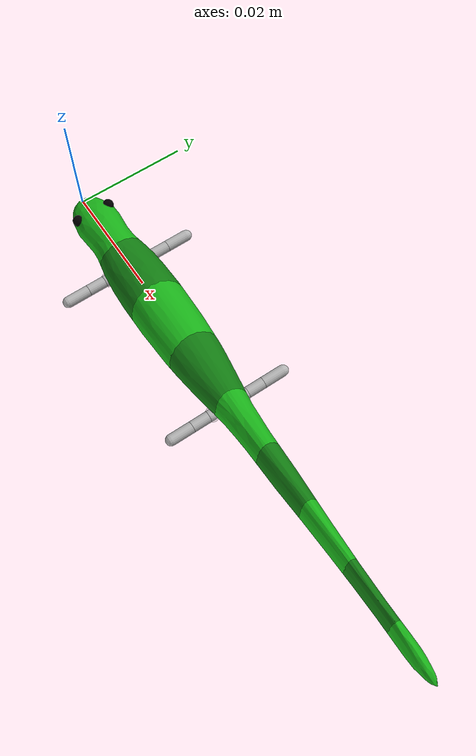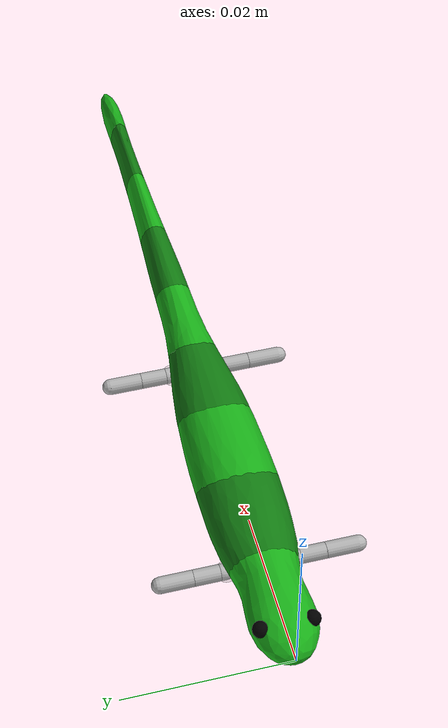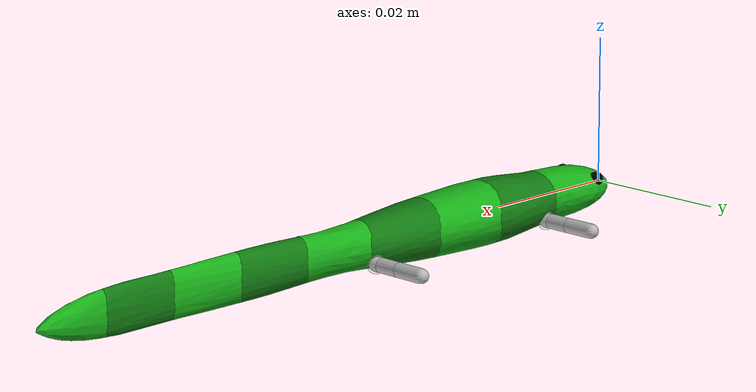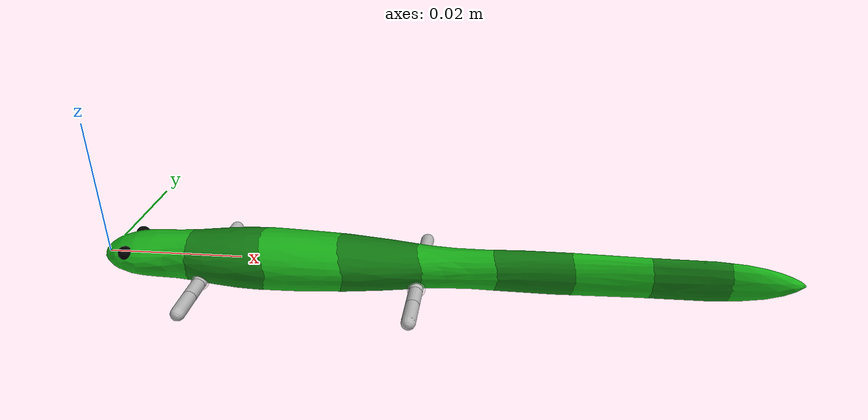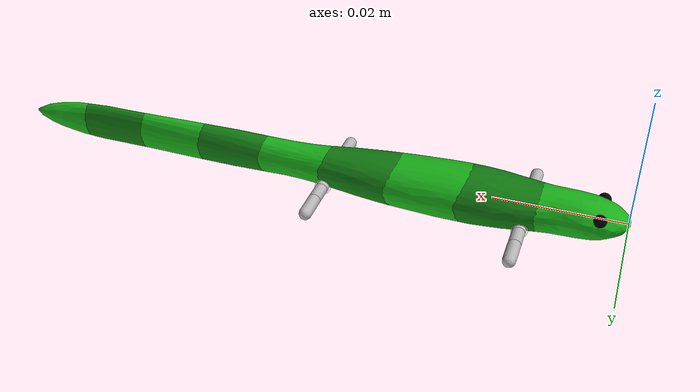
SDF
<?xml version="1.0" ?>
<sdf version="1.6">
  <world name="world">
    <model name="salamander">
      <pose>0.0 0.0 0.0 0.0 0.0 0.0</pose>
      <link name="link_body_0">
        <pose>0.0 0.0 0.0 0.0 0.0 0.0</pose>
        <inertial>
          <pose>0.006714263575088745 -1.960440964835103e-07 -1.371206419060886e-06 0.0 0.0 0.0</pose>
          <mass>0.00030133236332711153</mass>
          <inertia>
            <ixx>1.871392745404874e-09</ixx>
            <ixy>-1.580462968659555e-13</ixy>
            <ixz>2.595537477393151e-12</ixz>
            <iyy>3.441363919070135e-09</iyy>
            <iyz>1.1717730630065719e-13</iyz>
            <izz>3.76327339485108e-09</izz>
          </inertia>
        </inertial>
        <collision name="link_0_collision">
          <pose>0.0 0.0 0.0 0.0 0.0 0.0</pose>
          <geometry>
            <mesh>
              <uri>meshes_salamander/link_0.obj</uri>
              <scale>0.1 0.1 0.1</scale>
            </mesh>
          </geometry>
        </collision>
        <visual name="link_0_visual">
          <pose>0.0 0.0 0.0 0.0 0.0 0.0</pose>
          <geometry>
            <mesh>
              <uri>meshes_salamander/link_0.obj</uri>
              <scale>0.1 0.1 0.1</scale>
            </mesh>
          </geometry>
          <material>
            <ambient>0.1 0.7 0.1 1.0</ambient>
            <diffuse>0.1 0.7 0.1 1.0</diffuse>
            <specular>0.1 0.7 0.1 1.0</specular>
            <emissive>0.1 0.7 0.1 1.0</emissive>
          </material>
        </visual>
        <visual name="eye_left_visual">
          <pose>0.004 -0.003 0.0015 0.0 0.0 0.0</pose>
          <geometry>
            <sphere>
              <radius>0.001</radius>
            </sphere>
          </geometry>
          <material>
            <ambient>0.0 0.0 0.0 1.0</ambient>
            <diffuse>0.0 0.0 0.0 1.0</diffuse>
            <specular>0.0 0.0 0.0 1.0</specular>
            <emissive>0.0 0.0 0.0 1.0</emissive>
          </material>
        </visual>
        <visual name="eye_right_visual">
          <pose>0.004 0.003 0.0015 0.0 0.0 0.0</pose>
          <geometry>
            <sphere>
              <radius>0.001</radius>
            </sphere>
          </geometry>
          <material>
            <ambient>0.0 0.0 0.0 1.0</ambient>
            <diffuse>0.0 0.0 0.0 1.0</diffuse>
            <specular>0.0 0.0 0.0 1.0</specular>
            <emissive>0.0 0.0 0.0 1.0</emissive>
          </material>
        </visual>
      </link>
      <link name="link_body_1">
        <pose>0.015000000596046448 0.0 0.0 0.0 0.0 0.0</pose>
        <inertial>
          <pose>0.002220299492418204 -9.10891238377578e-07 8.627851573387512e-07 0.0 0.0 0.0</pose>
          <mass>0.00047672314163557265</mass>
          <inertia>
            <ixx>4.704344529910424e-09</ixx>
            <ixy>-2.5574259171123093e-13</ixy>
            <ixz>1.1674159359523158e-12</ixz>
            <iyy>6.530377982593764e-09</iyy>
            <iyz>-6.218596301748208e-13</iyz>
            <izz>7.427646096996682e-09</izz>
          </inertia>
        </inertial>
        <collision name="link_1_collision">
          <pose>0.0 0.0 0.0 0.0 0.0 0.0</pose>
          <geometry>
            <mesh>
              <uri>meshes_salamander/link_1.obj</uri>
              <scale>0.1 0.1 0.1</scale>
            </mesh>
          </geometry>
        </collision>
        <visual name="link_1_visual">
          <pose>0.0 0.0 0.0 0.0 0.0 0.0</pose>
          <geometry>
            <mesh>
              <uri>meshes_salamander/link_1.obj</uri>
              <scale>0.1 0.1 0.1</scale>
            </mesh>
          </geometry>
          <material>
            <ambient>0.06999999999999999 0.48999999999999994 0.06999999999999999 1.0</ambient>
            <diffuse>0.06999999999999999 0.48999999999999994 0.06999999999999999 1.0</diffuse>
            <specular>0.06999999999999999 0.48999999999999994 0.06999999999999999 1.0</specular>
            <emissive>0.06999999999999999 0.48999999999999994 0.06999999999999999 1.0</emissive>
          </material>
        </visual>
      </link>
      <link name="link_body_2">
        <pose>0.02571428716182709 0.0 0.0 0.0 0.0 0.0</pose>
        <inertial>
          <pose>0.0017968106358545559 1.336620445954096e-06 4.4264808275054773e-07 0.0 0.0 0.0</pose>
          <mass>0.0005975962731987004</mass>
          <inertia>
            <ixx>6.3573386233514856e-09</ixx>
            <ixy>-1.5872321051569855e-12</ixy>
            <ixz>-2.673802891263105e-12</ixz>
            <iyy>9.389179149860035e-09</iyy>
            <iyz>-1.7736360374768376e-13</iyz>
            <izz>1.0433443241321343e-08</izz>
          </inertia>
        </inertial>
        <collision name="link_2_collision">
          <pose>0.0 0.0 0.0 0.0 0.0 0.0</pose>
          <geometry>
            <mesh>
              <uri>meshes_salamander/link_2.obj</uri>
              <scale>0.1 0.1 0.1</scale>
            </mesh>
          </geometry>
        </collision>
        <visual name="link_2_visual">
          <pose>0.0 0.0 0.0 0.0 0.0 0.0</pose>
          <geometry>
            <mesh>
              <uri>meshes_salamander/link_2.obj</uri>
              <scale>0.1 0.1 0.1</scale>
            </mesh>
          </geometry>
          <material>
            <ambient>0.1 0.7 0.1 1.0</ambient>
            <diffuse>0.1 0.7 0.1 1.0</diffuse>
            <specular>0.1 0.7 0.1 1.0</specular>
            <emissive>0.1 0.7 0.1 1.0</emissive>
          </material>
        </visual>
      </link>
      <link name="link_body_3">
        <pose>0.03642857074737549 0.0 0.0 0.0 0.0 0.0</pose>
        <inertial>
          <pose>0.0021498116814032664 5.932256589600578e-07 -3.2742752553527933e-07 0.0 0.0 0.0</pose>
          <mass>0.0004700280027218766</mass>
          <inertia>
            <ixx>3.628310456626311e-09</ixx>
            <ixy>-3.9008625360486085e-13</ixy>
            <ixz>-2.0574068190527665e-12</ixz>
            <iyy>7.213461565878215e-09</iyy>
            <iyz>-7.54795992605657e-13</iyz>
            <izz>7.654095343951123e-09</izz>
          </inertia>
        </inertial>
        <collision name="link_3_collision">
          <pose>0.0 0.0 0.0 0.0 0.0 0.0</pose>
          <geometry>
            <mesh>
              <uri>meshes_salamander/link_3.obj</uri>
              <scale>0.1 0.1 0.1</scale>
            </mesh>
          </geometry>
        </collision>
        <visual name="link_3_visual">
          <pose>0.0 0.0 0.0 0.0 0.0 0.0</pose>
          <geometry>
            <mesh>
              <uri>meshes_salamander/link_3.obj</uri>
              <scale>0.1 0.1 0.1</scale>
            </mesh>
          </geometry>
          <material>
            <ambient>0.06999999999999999 0.48999999999999994 0.06999999999999999 1.0</ambient>
            <diffuse>0.06999999999999999 0.48999999999999994 0.06999999999999999 1.0</diffuse>
            <specular>0.06999999999999999 0.48999999999999994 0.06999999999999999 1.0</specular>
            <emissive>0.06999999999999999 0.48999999999999994 0.06999999999999999 1.0</emissive>
          </material>
        </visual>
      </link>
      <link name="link_body_4">
        <pose>0.04714285731315613 0.0 0.0 0.0 0.0 0.0</pose>
        <inertial>
          <pose>0.0030358143029494754 -2.4591814423833454e-07 2.0037478890438305e-06 0.0 0.0 0.0</pose>
          <mass>0.0002320604131992463</mass>
          <inertia>
            <ixx>9.476457794972613e-10</ixx>
            <ixy>-4.4850234545254333e-13</ixy>
            <ixz>-6.411879211692048e-13</ixz>
            <iyy>3.069675639027217e-09</iyy>
            <iyz>-1.1719858364671856e-12</iyz>
            <izz>2.960039747206307e-09</izz>
          </inertia>
        </inertial>
        <collision name="link_4_collision">
          <pose>0.0 0.0 0.0 0.0 0.0 0.0</pose>
          <geometry>
            <mesh>
              <uri>meshes_salamander/link_4.obj</uri>
              <scale>0.1 0.1 0.1</scale>
            </mesh>
          </geometry>
        </collision>
        <visual name="link_4_visual">
          <pose>0.0 0.0 0.0 0.0 0.0 0.0</pose>
          <geometry>
            <mesh>
              <uri>meshes_salamander/link_4.obj</uri>
              <scale>0.1 0.1 0.1</scale>
            </mesh>
          </geometry>
          <material>
            <ambient>0.1 0.7 0.1 1.0</ambient>
            <diffuse>0.1 0.7 0.1 1.0</diffuse>
            <specular>0.1 0.7 0.1 1.0</specular>
            <emissive>0.1 0.7 0.1 1.0</emissive>
          </material>
        </visual>
      </link>
      <link name="link_body_5">
        <pose>0.05785714387893677 0.0 0.0 0.0 0.0 0.0</pose>
        <inertial>
          <pose>0.0037639998035171826 1.0228943641398372e-07 1.43795662967751e-06 0.0 0.0 0.0</pose>
          <mass>0.00018695318327016324</mass>
          <inertia>
            <ixx>6.803177293479393e-10</ixx>
            <ixy>-1.8244898684009752e-13</ixy>
            <ixz>5.4126332555035076e-14</ixz>
            <iyy>2.396977652334704e-09</iyy>
            <iyz>-4.973977948992725e-14</iyz>
            <izz>2.1239303944779323e-09</izz>
          </inertia>
        </inertial>
        <collision name="link_5_collision">
          <pose>0.0 0.0 0.0 0.0 0.0 0.0</pose>
          <geometry>
            <mesh>
              <uri>meshes_salamander/link_5.obj</uri>
              <scale>0.1 0.1 0.1</scale>
            </mesh>
          </geometry>
        </collision>
        <visual name="link_5_visual">
          <pose>0.0 0.0 0.0 0.0 0.0 0.0</pose>
          <geometry>
            <mesh>
              <uri>meshes_salamander/link_5.obj</uri>
              <scale>0.1 0.1 0.1</scale>
            </mesh>
          </geometry>
          <material>
            <ambient>0.06999999999999999 0.48999999999999994 0.06999999999999999 1.0</ambient>
            <diffuse>0.06999999999999999 0.48999999999999994 0.06999999999999999 1.0</diffuse>
            <specular>0.06999999999999999 0.48999999999999994 0.06999999999999999 1.0</specular>
            <emissive>0.06999999999999999 0.48999999999999994 0.06999999999999999 1.0</emissive>
          </material>
        </visual>
      </link>
      <link name="link_body_6">
        <pose>0.0685714304447174 0.0 0.0 0.0 0.0 0.0</pose>
        <inertial>
          <pose>0.003930872660455469 -2.504626523218651e-07 -7.317062110898338e-07 0.0 0.0 0.0</pose>
          <mass>0.00014129535886692283</mass>
          <inertia>
            <ixx>4.5559250972119804e-10</ixx>
            <ixy>-2.1432233342400839e-13</ixy>
            <ixz>2.1668315641925428e-13</ixz>
            <iyy>1.8069601385778823e-09</iyy>
            <iyz>2.4379962172182226e-13</iyz>
            <izz>1.5260718041557112e-09</izz>
          </inertia>
        </inertial>
        <collision name="link_6_collision">
          <pose>0.0 0.0 0.0 0.0 0.0 0.0</pose>
          <geometry>
            <mesh>
              <uri>meshes_salamander/link_6.obj</uri>
              <scale>0.1 0.1 0.1</scale>
            </mesh>
          </geometry>
        </collision>
        <visual name="link_6_visual">
          <pose>0.0 0.0 0.0 0.0 0.0 0.0</pose>
          <geometry>
            <mesh>
              <uri>meshes_salamander/link_6.obj</uri>
              <scale>0.1 0.1 0.1</scale>
            </mesh>
          </geometry>
          <material>
            <ambient>0.1 0.7 0.1 1.0</ambient>
            <diffuse>0.1 0.7 0.1 1.0</diffuse>
            <specular>0.1 0.7 0.1 1.0</specular>
            <emissive>0.1 0.7 0.1 1.0</emissive>
          </material>
        </visual>
      </link>
      <link name="link_body_7">
        <pose>0.07928571701049805 0.0 0.0 0.0 0.0 0.0</pose>
        <inertial>
          <pose>0.004277215855732852 1.4231918064340268e-06 -3.804498897934417e-06 0.0 0.0 0.0</pose>
          <mass>0.00010409173814124655</mass>
          <inertia>
            <ixx>2.9803750476599033e-10</ixx>
            <ixy>1.3218380674003593e-13</ixy>
            <ixz>2.4143982548428853e-13</ixz>
            <iyy>1.2829293383985688e-09</iyy>
            <iyz>-5.986609446803471e-14</iyz>
            <izz>1.0612370823759156e-09</izz>
          </inertia>
        </inertial>
        <collision name="link_7_collision">
          <pose>0.0 0.0 0.0 0.0 0.0 0.0</pose>
          <geometry>
            <mesh>
              <uri>meshes_salamander/link_7.obj</uri>
              <scale>0.1 0.1 0.1</scale>
            </mesh>
          </geometry>
        </collision>
        <visual name="link_7_visual">
          <pose>0.0 0.0 0.0 0.0 0.0 0.0</pose>
          <geometry>
            <mesh>
              <uri>meshes_salamander/link_7.obj</uri>
              <scale>0.1 0.1 0.1</scale>
            </mesh>
          </geometry>
          <material>
            <ambient>0.06999999999999999 0.48999999999999994 0.06999999999999999 1.0</ambient>
            <diffuse>0.06999999999999999 0.48999999999999994 0.06999999999999999 1.0</diffuse>
            <specular>0.06999999999999999 0.48999999999999994 0.06999999999999999 1.0</specular>
            <emissive>0.06999999999999999 0.48999999999999994 0.06999999999999999 1.0</emissive>
          </material>
        </visual>
      </link>
      <link name="link_body_8">
        <pose>0.08999999761581422 0.0 0.0 0.0 0.0 0.0</pose>
        <inertial>
          <pose>0.0031009513903408055 -3.8104457407535856e-07 -2.2183405479165574e-07 0.0 0.0 0.0</pose>
          <mass>6.504374491994881e-05</mass>
          <inertia>
            <ixx>1.2226978618918127e-10</ixx>
            <ixy>1.6420788448950181e-13</ixy>
            <ixz>-1.9110569761093235e-13</ixz>
            <iyy>5.157770720769804e-10</iyy>
            <iyz>-9.629863494304086e-14</iyz>
            <izz>4.3925506511082714e-10</izz>
          </inertia>
        </inertial>
        <collision name="link_8_collision">
          <pose>0.0 0.0 0.0 0.0 0.0 0.0</pose>
          <geometry>
            <mesh>
              <uri>meshes_salamander/link_8.obj</uri>
              <scale>0.1 0.1 0.1</scale>
            </mesh>
          </geometry>
        </collision>
        <visual name="link_8_visual">
          <pose>0.0 0.0 0.0 0.0 0.0 0.0</pose>
          <geometry>
            <mesh>
              <uri>meshes_salamander/link_8.obj</uri>
              <scale>0.1 0.1 0.1</scale>
            </mesh>
          </geometry>
          <material>
            <ambient>0.1 0.7 0.1 1.0</ambient>
            <diffuse>0.1 0.7 0.1 1.0</diffuse>
            <specular>0.1 0.7 0.1 1.0</specular>
            <emissive>0.1 0.7 0.1 1.0</emissive>
          </material>
        </visual>
      </link>
      <link name="link_leg_0_L_0">
        <pose>0.015000000596046448 -0.004 -0.002 0.0 0.0 0.0</pose>
        <collision name="link_leg_0_L_0_collision">
          <pose>0.0 0.0 0.0 0.0 0.0 0.0</pose>
          <geometry>
            <sphere>
              <radius>0.0011</radius>
            </sphere>
          </geometry>
        </collision>
        <visual name="link_leg_0_L_0_visual">
          <pose>0.0 0.0 0.0 0.0 0.0 0.0</pose>
          <geometry>
            <sphere>
              <radius>0.0011</radius>
            </sphere>
          </geometry>
          <material>
            <ambient>0.7 0.5 0.5 0.5</ambient>
            <diffuse>0.7 0.5 0.5 0.5</diffuse>
            <specular>0.7 0.5 0.5 0.5</specular>
            <emissive>0.7 0.5 0.5 0.5</emissive>
          </material>
        </visual>
      </link>
      <link name="link_leg_0_L_1">
        <pose>0.015000000596046448 -0.004 -0.002 0.0 0.0 0.0</pose>
        <collision name="link_leg_0_L_1_collision">
          <pose>0.0 0.0 0.0 0.0 0.0 0.0</pose>
          <geometry>
            <sphere>
              <radius>0.0013000000000000002</radius>
            </sphere>
          </geometry>
        </collision>
        <visual name="link_leg_0_L_1_visual">
          <pose>0.0 0.0 0.0 0.0 0.0 0.0</pose>
          <geometry>
            <sphere>
              <radius>0.0013000000000000002</radius>
            </sphere>
          </geometry>
          <material>
            <ambient>0.9 0.9 0.9 0.3</ambient>
            <diffuse>0.9 0.9 0.9 0.3</diffuse>
            <specular>0.9 0.9 0.9 0.3</specular>
            <emissive>0.9 0.9 0.9 0.3</emissive>
          </material>
        </visual>
      </link>
      <link name="link_leg_0_L_2">
        <pose>0.015000000596046448 -0.004 -0.002 0.0 0.0 0.0</pose>
        <inertial>
          <pose>0.0 -0.002 0.0 1.5707963267948966 0.0 0.0</pose>
          <mass>1.6755160819145562e-05</mass>
          <inertia>
            <ixx>2.652900463031381e-11</ixx>
            <ixy>0</ixy>
            <ixz>0</ixz>
            <iyy>2.652900463031381e-11</iyy>
            <iyz>0</iyz>
            <izz>8.37758040957278e-12</izz>
          </inertia>
        </inertial>
        <collision name="link_leg_0_L_2_collision">
          <pose>0 -0.002 0 1.5707963267948966 0 0</pose>
          <geometry>
            <capsule>
              <radius>0.001</radius>
              <length>0.004</length>
            </capsule>
          </geometry>
        </collision>
        <visual name="link_leg_0_L_2_visual">
          <pose>0 -0.002 0 1.5707963267948966 0 0</pose>
          <geometry>
            <capsule>
              <radius>0.001</radius>
              <length>0.004</length>
            </capsule>
          </geometry>
          <material/>
        </visual>
      </link>
      <link name="link_leg_0_L_3">
        <pose>0.015000000596046448 -0.008 -0.002 0.0 0.0 0.0</pose>
        <inertial>
          <pose>0.0 -0.002 0.0 1.5707963267948966 0.0 0.0</pose>
          <mass>1.6755160819145562e-05</mass>
          <inertia>
            <ixx>2.652900463031381e-11</ixx>
            <ixy>0</ixy>
            <ixz>0</ixz>
            <iyy>2.652900463031381e-11</iyy>
            <iyz>0</iyz>
            <izz>8.37758040957278e-12</izz>
          </inertia>
        </inertial>
        <collision name="link_leg_0_L_3_collision">
          <pose>0 -0.002 0 1.5707963267948966 0 0</pose>
          <geometry>
            <capsule>
              <radius>0.001</radius>
              <length>0.004</length>
            </capsule>
          </geometry>
        </collision>
        <visual name="link_leg_0_L_3_visual">
          <pose>0 -0.002 0 1.5707963267948966 0 0</pose>
          <geometry>
            <capsule>
              <radius>0.001</radius>
              <length>0.004</length>
            </capsule>
          </geometry>
          <material/>
        </visual>
      </link>
      <link name="link_leg_0_R_0">
        <pose>0.015000000596046448 0.004 -0.002 0.0 0.0 0.0</pose>
        <collision name="link_leg_0_R_0_collision">
          <pose>0.0 0.0 0.0 0.0 0.0 0.0</pose>
          <geometry>
            <sphere>
              <radius>0.0011</radius>
            </sphere>
          </geometry>
        </collision>
        <visual name="link_leg_0_R_0_visual">
          <pose>0.0 0.0 0.0 0.0 0.0 0.0</pose>
          <geometry>
            <sphere>
              <radius>0.0011</radius>
            </sphere>
          </geometry>
          <material>
            <ambient>0.7 0.5 0.5 0.5</ambient>
            <diffuse>0.7 0.5 0.5 0.5</diffuse>
            <specular>0.7 0.5 0.5 0.5</specular>
            <emissive>0.7 0.5 0.5 0.5</emissive>
          </material>
        </visual>
      </link>
      <link name="link_leg_0_R_1">
        <pose>0.015000000596046448 0.004 -0.002 0.0 0.0 0.0</pose>
        <collision name="link_leg_0_R_1_collision">
          <pose>0.0 0.0 0.0 0.0 0.0 0.0</pose>
          <geometry>
            <sphere>
              <radius>0.0013000000000000002</radius>
            </sphere>
          </geometry>
        </collision>
        <visual name="link_leg_0_R_1_visual">
          <pose>0.0 0.0 0.0 0.0 0.0 0.0</pose>
          <geometry>
            <sphere>
              <radius>0.0013000000000000002</radius>
            </sphere>
          </geometry>
          <material>
            <ambient>0.9 0.9 0.9 0.3</ambient>
            <diffuse>0.9 0.9 0.9 0.3</diffuse>
            <specular>0.9 0.9 0.9 0.3</specular>
            <emissive>0.9 0.9 0.9 0.3</emissive>
          </material>
        </visual>
      </link>
      <link name="link_leg_0_R_2">
        <pose>0.015000000596046448 0.004 -0.002 0.0 0.0 0.0</pose>
        <inertial>
          <pose>0.0 0.002 0.0 1.5707963267948966 0.0 0.0</pose>
          <mass>1.6755160819145562e-05</mass>
          <inertia>
            <ixx>2.652900463031381e-11</ixx>
            <ixy>0</ixy>
            <ixz>0</ixz>
            <iyy>2.652900463031381e-11</iyy>
            <iyz>0</iyz>
            <izz>8.37758040957278e-12</izz>
          </inertia>
        </inertial>
        <collision name="link_leg_0_R_2_collision">
          <pose>0 0.002 0 1.5707963267948966 0 0</pose>
          <geometry>
            <capsule>
              <radius>0.001</radius>
              <length>0.004</length>
            </capsule>
          </geometry>
        </collision>
        <visual name="link_leg_0_R_2_visual">
          <pose>0 0.002 0 1.5707963267948966 0 0</pose>
          <geometry>
            <capsule>
              <radius>0.001</radius>
              <length>0.004</length>
            </capsule>
          </geometry>
          <material/>
        </visual>
      </link>
      <link name="link_leg_0_R_3">
        <pose>0.015000000596046448 0.008 -0.002 0.0 0.0 0.0</pose>
        <inertial>
          <pose>0.0 0.002 0.0 1.5707963267948966 0.0 0.0</pose>
          <mass>1.6755160819145562e-05</mass>
          <inertia>
            <ixx>2.652900463031381e-11</ixx>
            <ixy>0</ixy>
            <ixz>0</ixz>
            <iyy>2.652900463031381e-11</iyy>
            <iyz>0</iyz>
            <izz>8.37758040957278e-12</izz>
          </inertia>
        </inertial>
        <collision name="link_leg_0_R_3_collision">
          <pose>0 0.002 0 1.5707963267948966 0 0</pose>
          <geometry>
            <capsule>
              <radius>0.001</radius>
              <length>0.004</length>
            </capsule>
          </geometry>
        </collision>
        <visual name="link_leg_0_R_3_visual">
          <pose>0 0.002 0 1.5707963267948966 0 0</pose>
          <geometry>
            <capsule>
              <radius>0.001</radius>
              <length>0.004</length>
            </capsule>
          </geometry>
          <material/>
        </visual>
      </link>
      <link name="link_leg_1_L_0">
        <pose>0.04614285731315613 -0.003 -0.002 0.0 0.0 0.0</pose>
        <collision name="link_leg_1_L_0_collision">
          <pose>0.0 0.0 0.0 0.0 0.0 0.0</pose>
          <geometry>
            <sphere>
              <radius>0.0011</radius>
            </sphere>
          </geometry>
        </collision>
        <visual name="link_leg_1_L_0_visual">
          <pose>0.0 0.0 0.0 0.0 0.0 0.0</pose>
          <geometry>
            <sphere>
              <radius>0.0011</radius>
            </sphere>
          </geometry>
          <material>
            <ambient>0.7 0.5 0.5 0.5</ambient>
            <diffuse>0.7 0.5 0.5 0.5</diffuse>
            <specular>0.7 0.5 0.5 0.5</specular>
            <emissive>0.7 0.5 0.5 0.5</emissive>
          </material>
        </visual>
      </link>
      <link name="link_leg_1_L_1">
        <pose>0.04614285731315613 -0.003 -0.002 0.0 0.0 0.0</pose>
        <collision name="link_leg_1_L_1_collision">
          <pose>0.0 0.0 0.0 0.0 0.0 0.0</pose>
          <geometry>
            <sphere>
              <radius>0.0013000000000000002</radius>
            </sphere>
          </geometry>
        </collision>
        <visual name="link_leg_1_L_1_visual">
          <pose>0.0 0.0 0.0 0.0 0.0 0.0</pose>
          <geometry>
            <sphere>
              <radius>0.0013000000000000002</radius>
            </sphere>
          </geometry>
          <material>
            <ambient>0.9 0.9 0.9 0.3</ambient>
            <diffuse>0.9 0.9 0.9 0.3</diffuse>
            <specular>0.9 0.9 0.9 0.3</specular>
            <emissive>0.9 0.9 0.9 0.3</emissive>
          </material>
        </visual>
      </link>
      <link name="link_leg_1_L_2">
        <pose>0.04614285731315613 -0.003 -0.002 0.0 0.0 0.0</pose>
        <inertial>
          <pose>0.0 -0.002 0.0 1.5707963267948966 0.0 0.0</pose>
          <mass>1.6755160819145562e-05</mass>
          <inertia>
            <ixx>2.652900463031381e-11</ixx>
            <ixy>0</ixy>
            <ixz>0</ixz>
            <iyy>2.652900463031381e-11</iyy>
            <iyz>0</iyz>
            <izz>8.37758040957278e-12</izz>
          </inertia>
        </inertial>
        <collision name="link_leg_1_L_2_collision">
          <pose>0 -0.002 0 1.5707963267948966 0 0</pose>
          <geometry>
            <capsule>
              <radius>0.001</radius>
              <length>0.004</length>
            </capsule>
          </geometry>
        </collision>
        <visual name="link_leg_1_L_2_visual">
          <pose>0 -0.002 0 1.5707963267948966 0 0</pose>
          <geometry>
            <capsule>
              <radius>0.001</radius>
              <length>0.004</length>
            </capsule>
          </geometry>
          <material/>
        </visual>
      </link>
      <link name="link_leg_1_L_3">
        <pose>0.04614285731315613 -0.007 -0.002 0.0 0.0 0.0</pose>
        <inertial>
          <pose>0.0 -0.002 0.0 1.5707963267948966 0.0 0.0</pose>
          <mass>1.6755160819145562e-05</mass>
          <inertia>
            <ixx>2.652900463031381e-11</ixx>
            <ixy>0</ixy>
            <ixz>0</ixz>
            <iyy>2.652900463031381e-11</iyy>
            <iyz>0</iyz>
            <izz>8.37758040957278e-12</izz>
          </inertia>
        </inertial>
        <collision name="link_leg_1_L_3_collision">
          <pose>0 -0.002 0 1.5707963267948966 0 0</pose>
          <geometry>
            <capsule>
              <radius>0.001</radius>
              <length>0.004</length>
            </capsule>
          </geometry>
        </collision>
        <visual name="link_leg_1_L_3_visual">
          <pose>0 -0.002 0 1.5707963267948966 0 0</pose>
          <geometry>
            <capsule>
              <radius>0.001</radius>
              <length>0.004</length>
            </capsule>
          </geometry>
          <material/>
        </visual>
      </link>
      <link name="link_leg_1_R_0">
        <pose>0.04614285731315613 0.003 -0.002 0.0 0.0 0.0</pose>
        <collision name="link_leg_1_R_0_collision">
          <pose>0.0 0.0 0.0 0.0 0.0 0.0</pose>
          <geometry>
            <sphere>
              <radius>0.0011</radius>
            </sphere>
          </geometry>
        </collision>
        <visual name="link_leg_1_R_0_visual">
          <pose>0.0 0.0 0.0 0.0 0.0 0.0</pose>
          <geometry>
            <sphere>
              <radius>0.0011</radius>
            </sphere>
          </geometry>
          <material>
            <ambient>0.7 0.5 0.5 0.5</ambient>
            <diffuse>0.7 0.5 0.5 0.5</diffuse>
            <specular>0.7 0.5 0.5 0.5</specular>
            <emissive>0.7 0.5 0.5 0.5</emissive>
          </material>
        </visual>
      </link>
      <link name="link_leg_1_R_1">
        <pose>0.04614285731315613 0.003 -0.002 0.0 0.0 0.0</pose>
        <collision name="link_leg_1_R_1_collision">
          <pose>0.0 0.0 0.0 0.0 0.0 0.0</pose>
          <geometry>
            <sphere>
              <radius>0.0013000000000000002</radius>
            </sphere>
          </geometry>
        </collision>
        <visual name="link_leg_1_R_1_visual">
          <pose>0.0 0.0 0.0 0.0 0.0 0.0</pose>
          <geometry>
            <sphere>
              <radius>0.0013000000000000002</radius>
            </sphere>
          </geometry>
          <material>
            <ambient>0.9 0.9 0.9 0.3</ambient>
            <diffuse>0.9 0.9 0.9 0.3</diffuse>
            <specular>0.9 0.9 0.9 0.3</specular>
            <emissive>0.9 0.9 0.9 0.3</emissive>
          </material>
        </visual>
      </link>
      <link name="link_leg_1_R_2">
        <pose>0.04614285731315613 0.003 -0.002 0.0 0.0 0.0</pose>
        <inertial>
          <pose>0.0 0.002 0.0 1.5707963267948966 0.0 0.0</pose>
          <mass>1.6755160819145562e-05</mass>
          <inertia>
            <ixx>2.652900463031381e-11</ixx>
            <ixy>0</ixy>
            <ixz>0</ixz>
            <iyy>2.652900463031381e-11</iyy>
            <iyz>0</iyz>
            <izz>8.37758040957278e-12</izz>
          </inertia>
        </inertial>
        <collision name="link_leg_1_R_2_collision">
          <pose>0 0.002 0 1.5707963267948966 0 0</pose>
          <geometry>
            <capsule>
              <radius>0.001</radius>
              <length>0.004</length>
            </capsule>
          </geometry>
        </collision>
        <visual name="link_leg_1_R_2_visual">
          <pose>0 0.002 0 1.5707963267948966 0 0</pose>
          <geometry>
            <capsule>
              <radius>0.001</radius>
              <length>0.004</length>
            </capsule>
          </geometry>
          <material/>
        </visual>
      </link>
      <link name="link_leg_1_R_3">
        <pose>0.04614285731315613 0.007 -0.002 0.0 0.0 0.0</pose>
        <inertial>
          <pose>0.0 0.002 0.0 1.5707963267948966 0.0 0.0</pose>
          <mass>1.6755160819145562e-05</mass>
          <inertia>
            <ixx>2.652900463031381e-11</ixx>
            <ixy>0</ixy>
            <ixz>0</ixz>
            <iyy>2.652900463031381e-11</iyy>
            <iyz>0</iyz>
            <izz>8.37758040957278e-12</izz>
          </inertia>
        </inertial>
        <collision name="link_leg_1_R_3_collision">
          <pose>0 0.002 0 1.5707963267948966 0 0</pose>
          <geometry>
            <capsule>
              <radius>0.001</radius>
              <length>0.004</length>
            </capsule>
          </geometry>
        </collision>
        <visual name="link_leg_1_R_3_visual">
          <pose>0 0.002 0 1.5707963267948966 0 0</pose>
          <geometry>
            <capsule>
              <radius>0.001</radius>
              <length>0.004</length>
            </capsule>
          </geometry>
          <material/>
        </visual>
      </link>
      <link name="foot_0_0">
        <pose>0.015000000596046448 -0.013000000000000001 -0.002 0.0 0.0 0.0</pose>
      </link>
      <link name="foot_0_1">
        <pose>0.015000000596046448 0.013000000000000001 -0.002 0.0 0.0 0.0</pose>
      </link>
      <link name="foot_1_0">
        <pose>0.04614285731315613 -0.012 -0.002 0.0 0.0 0.0</pose>
      </link>
      <link name="foot_1_1">
        <pose>0.04614285731315613 0.012 -0.002 0.0 0.0 0.0</pose>
      </link>
      <link name="link_passive_0">
        <pose>0.02571428716182709 0.0 0.0 0.0 0.0 0.0</pose>
      </link>
      <link name="link_passive_1">
        <pose>0.04714285731315613 0.0 0.0 0.0 0.0 0.0</pose>
      </link>
      <link name="link_passive_2">
        <pose>0.05785714387893677 0.0 0.0 0.0 0.0 0.0</pose>
      </link>
      <link name="link_passive_3">
        <pose>0.0685714304447174 0.0 0.0 0.0 0.0 0.0</pose>
      </link>
      <link name="link_passive_4">
        <pose>0.07928571701049805 0.0 0.0 0.0 0.0 0.0</pose>
      </link>
      <link name="link_passive_5">
        <pose>0.08999999761581422 0.0 0.0 0.0 0.0 0.0</pose>
      </link>
      <joint name="joint_body_0" type="revolute">
        <parent>link_body_0</parent>
        <child>link_body_1</child>
        <pose>0.0 0.0 0.0 0.0 0.0 0.0</pose>
        <axis>
          <xyz>0.0 0.0 1.0</xyz>
          <limit>
            <lower>-1.5707963267948966</lower>
            <upper>1.5707963267948966</upper>
            <effort>inf</effort>
            <velocity>inf</velocity>
          </limit>
        </axis>
      </joint>
      <joint name="joint_body_1" type="revolute">
        <parent>link_passive_0</parent>
        <child>link_body_2</child>
        <pose>0.0 0.0 0.0 0.0 0.0 0.0</pose>
        <axis>
          <xyz>0.0 0.0 1.0</xyz>
          <limit>
            <lower>-1.5707963267948966</lower>
            <upper>1.5707963267948966</upper>
            <effort>inf</effort>
            <velocity>inf</velocity>
          </limit>
        </axis>
      </joint>
      <joint name="joint_body_2" type="revolute">
        <parent>link_body_2</parent>
        <child>link_body_3</child>
        <pose>0.0 0.0 0.0 0.0 0.0 0.0</pose>
        <axis>
          <xyz>0.0 0.0 1.0</xyz>
          <limit>
            <lower>-1.5707963267948966</lower>
            <upper>1.5707963267948966</upper>
            <effort>inf</effort>
            <velocity>inf</velocity>
          </limit>
        </axis>
      </joint>
      <joint name="joint_body_3" type="revolute">
        <parent>link_passive_1</parent>
        <child>link_body_4</child>
        <pose>0.0 0.0 0.0 0.0 0.0 0.0</pose>
        <axis>
          <xyz>0.0 0.0 1.0</xyz>
          <limit>
            <lower>-1.5707963267948966</lower>
            <upper>1.5707963267948966</upper>
            <effort>inf</effort>
            <velocity>inf</velocity>
          </limit>
        </axis>
      </joint>
      <joint name="joint_body_4" type="revolute">
        <parent>link_passive_2</parent>
        <child>link_body_5</child>
        <pose>0.0 0.0 0.0 0.0 0.0 0.0</pose>
        <axis>
          <xyz>0.0 0.0 1.0</xyz>
          <limit>
            <lower>-1.5707963267948966</lower>
            <upper>1.5707963267948966</upper>
            <effort>inf</effort>
            <velocity>inf</velocity>
          </limit>
        </axis>
      </joint>
      <joint name="joint_body_5" type="revolute">
        <parent>link_passive_3</parent>
        <child>link_body_6</child>
        <pose>0.0 0.0 0.0 0.0 0.0 0.0</pose>
        <axis>
          <xyz>0.0 0.0 1.0</xyz>
          <limit>
            <lower>-1.5707963267948966</lower>
            <upper>1.5707963267948966</upper>
            <effort>inf</effort>
            <velocity>inf</velocity>
          </limit>
        </axis>
      </joint>
      <joint name="joint_body_6" type="revolute">
        <parent>link_passive_4</parent>
        <child>link_body_7</child>
        <pose>0.0 0.0 0.0 0.0 0.0 0.0</pose>
        <axis>
          <xyz>0.0 0.0 1.0</xyz>
          <limit>
            <lower>-1.5707963267948966</lower>
            <upper>1.5707963267948966</upper>
            <effort>inf</effort>
            <velocity>inf</velocity>
          </limit>
        </axis>
      </joint>
      <joint name="joint_body_7" type="revolute">
        <parent>link_passive_5</parent>
        <child>link_body_8</child>
        <pose>0.0 0.0 0.0 0.0 0.0 0.0</pose>
        <axis>
          <xyz>0.0 0.0 1.0</xyz>
          <limit>
            <lower>-1.5707963267948966</lower>
            <upper>1.5707963267948966</upper>
            <effort>inf</effort>
            <velocity>inf</velocity>
          </limit>
        </axis>
      </joint>
      <joint name="joint_leg_0_L_0" type="revolute">
        <parent>link_body_1</parent>
        <child>link_leg_0_L_0</child>
        <pose>0.0 0.0 0.0 0.0 0.0 0.0</pose>
        <axis>
          <xyz>0 0 -1</xyz>
          <limit>
            <lower>-3.141592653589793</lower>
            <upper>3.141592653589793</upper>
            <effort>inf</effort>
            <velocity>inf</velocity>
          </limit>
        </axis>
      </joint>
      <joint name="joint_leg_0_L_1" type="revolute">
        <parent>link_leg_0_L_0</parent>
        <child>link_leg_0_L_1</child>
        <pose>0.0 0.0 0.0 0.0 0.0 0.0</pose>
        <axis>
          <xyz>1 0 0</xyz>
          <limit>
            <lower>-3.141592653589793</lower>
            <upper>3.141592653589793</upper>
            <effort>inf</effort>
            <velocity>inf</velocity>
          </limit>
        </axis>
      </joint>
      <joint name="joint_leg_0_L_2" type="revolute">
        <parent>link_leg_0_L_1</parent>
        <child>link_leg_0_L_2</child>
        <pose>0.0 0.0 0.0 0.0 0.0 0.0</pose>
        <axis>
          <xyz>0 1 0</xyz>
          <limit>
            <lower>-3.141592653589793</lower>
            <upper>3.141592653589793</upper>
            <effort>inf</effort>
            <velocity>inf</velocity>
          </limit>
        </axis>
      </joint>
      <joint name="joint_leg_0_L_3" type="revolute">
        <parent>link_leg_0_L_2</parent>
        <child>link_leg_0_L_3</child>
        <pose>0.0 0.0 0.0 0.0 0.0 0.0</pose>
        <axis>
          <xyz>1 0 0</xyz>
          <limit>
            <lower>-3.141592653589793</lower>
            <upper>3.141592653589793</upper>
            <effort>inf</effort>
            <velocity>inf</velocity>
          </limit>
        </axis>
      </joint>
      <joint name="joint_leg_0_R_0" type="revolute">
        <parent>link_body_1</parent>
        <child>link_leg_0_R_0</child>
        <pose>0.0 0.0 0.0 0.0 0.0 0.0</pose>
        <axis>
          <xyz>0 0 1</xyz>
          <limit>
            <lower>-3.141592653589793</lower>
            <upper>3.141592653589793</upper>
            <effort>inf</effort>
            <velocity>inf</velocity>
          </limit>
        </axis>
      </joint>
      <joint name="joint_leg_0_R_1" type="revolute">
        <parent>link_leg_0_R_0</parent>
        <child>link_leg_0_R_1</child>
        <pose>0.0 0.0 0.0 0.0 0.0 0.0</pose>
        <axis>
          <xyz>-1 0 0</xyz>
          <limit>
            <lower>-3.141592653589793</lower>
            <upper>3.141592653589793</upper>
            <effort>inf</effort>
            <velocity>inf</velocity>
          </limit>
        </axis>
      </joint>
      <joint name="joint_leg_0_R_2" type="revolute">
        <parent>link_leg_0_R_1</parent>
        <child>link_leg_0_R_2</child>
        <pose>0.0 0.0 0.0 0.0 0.0 0.0</pose>
        <axis>
          <xyz>0 1 0</xyz>
          <limit>
            <lower>-3.141592653589793</lower>
            <upper>3.141592653589793</upper>
            <effort>inf</effort>
            <velocity>inf</velocity>
          </limit>
        </axis>
      </joint>
      <joint name="joint_leg_0_R_3" type="revolute">
        <parent>link_leg_0_R_2</parent>
        <child>link_leg_0_R_3</child>
        <pose>0.0 0.0 0.0 0.0 0.0 0.0</pose>
        <axis>
          <xyz>-1 0 0</xyz>
          <limit>
            <lower>-3.141592653589793</lower>
            <upper>3.141592653589793</upper>
            <effort>inf</effort>
            <velocity>inf</velocity>
          </limit>
        </axis>
      </joint>
      <joint name="joint_leg_1_L_0" type="revolute">
        <parent>link_body_4</parent>
        <child>link_leg_1_L_0</child>
        <pose>0.0 0.0 0.0 0.0 0.0 0.0</pose>
        <axis>
          <xyz>0 0 -1</xyz>
          <limit>
            <lower>-3.141592653589793</lower>
            <upper>3.141592653589793</upper>
            <effort>inf</effort>
            <velocity>inf</velocity>
          </limit>
        </axis>
      </joint>
      <joint name="joint_leg_1_L_1" type="revolute">
        <parent>link_leg_1_L_0</parent>
        <child>link_leg_1_L_1</child>
        <pose>0.0 0.0 0.0 0.0 0.0 0.0</pose>
        <axis>
          <xyz>1 0 0</xyz>
          <limit>
            <lower>-3.141592653589793</lower>
            <upper>3.141592653589793</upper>
            <effort>inf</effort>
            <velocity>inf</velocity>
          </limit>
        </axis>
      </joint>
      <joint name="joint_leg_1_L_2" type="revolute">
        <parent>link_leg_1_L_1</parent>
        <child>link_leg_1_L_2</child>
        <pose>0.0 0.0 0.0 0.0 0.0 0.0</pose>
        <axis>
          <xyz>0 1 0</xyz>
          <limit>
            <lower>-3.141592653589793</lower>
            <upper>3.141592653589793</upper>
            <effort>inf</effort>
            <velocity>inf</velocity>
          </limit>
        </axis>
      </joint>
      <joint name="joint_leg_1_L_3" type="revolute">
        <parent>link_leg_1_L_2</parent>
        <child>link_leg_1_L_3</child>
        <pose>0.0 0.0 0.0 0.0 0.0 0.0</pose>
        <axis>
          <xyz>1 0 0</xyz>
          <limit>
            <lower>-3.141592653589793</lower>
            <upper>3.141592653589793</upper>
            <effort>inf</effort>
            <velocity>inf</velocity>
          </limit>
        </axis>
      </joint>
      <joint name="joint_leg_1_R_0" type="revolute">
        <parent>link_body_4</parent>
        <child>link_leg_1_R_0</child>
        <pose>0.0 0.0 0.0 0.0 0.0 0.0</pose>
        <axis>
          <xyz>0 0 1</xyz>
          <limit>
            <lower>-3.141592653589793</lower>
            <upper>3.141592653589793</upper>
            <effort>inf</effort>
            <velocity>inf</velocity>
          </limit>
        </axis>
      </joint>
      <joint name="joint_leg_1_R_1" type="revolute">
        <parent>link_leg_1_R_0</parent>
        <child>link_leg_1_R_1</child>
        <pose>0.0 0.0 0.0 0.0 0.0 0.0</pose>
        <axis>
          <xyz>-1 0 0</xyz>
          <limit>
            <lower>-3.141592653589793</lower>
            <upper>3.141592653589793</upper>
            <effort>inf</effort>
            <velocity>inf</velocity>
          </limit>
        </axis>
      </joint>
      <joint name="joint_leg_1_R_2" type="revolute">
        <parent>link_leg_1_R_1</parent>
        <child>link_leg_1_R_2</child>
        <pose>0.0 0.0 0.0 0.0 0.0 0.0</pose>
        <axis>
          <xyz>0 1 0</xyz>
          <limit>
            <lower>-3.141592653589793</lower>
            <upper>3.141592653589793</upper>
            <effort>inf</effort>
            <velocity>inf</velocity>
          </limit>
        </axis>
      </joint>
      <joint name="joint_leg_1_R_3" type="revolute">
        <parent>link_leg_1_R_2</parent>
        <child>link_leg_1_R_3</child>
        <pose>0.0 0.0 0.0 0.0 0.0 0.0</pose>
        <axis>
          <xyz>-1 0 0</xyz>
          <limit>
            <lower>-3.141592653589793</lower>
            <upper>3.141592653589793</upper>
            <effort>inf</effort>
            <velocity>inf</velocity>
          </limit>
        </axis>
      </joint>
      <joint name="joint_foot_0_0" type="fixed">
        <parent>link_leg_0_L_3</parent>
        <child>foot_0_0</child>
        <pose>0.0 0.0 0.0 0.0 0.0 0.0</pose>
      </joint>
      <joint name="joint_foot_0_1" type="fixed">
        <parent>link_leg_0_R_3</parent>
        <child>foot_0_1</child>
        <pose>0.0 0.0 0.0 0.0 0.0 0.0</pose>
      </joint>
      <joint name="joint_foot_1_0" type="fixed">
        <parent>link_leg_1_L_3</parent>
        <child>foot_1_0</child>
        <pose>0.0 0.0 0.0 0.0 0.0 0.0</pose>
      </joint>
      <joint name="joint_foot_1_1" type="fixed">
        <parent>link_leg_1_R_3</parent>
        <child>foot_1_1</child>
        <pose>0.0 0.0 0.0 0.0 0.0 0.0</pose>
      </joint>
      <joint name="joint_passive_0" type="revolute">
        <parent>link_body_1</parent>
        <child>link_passive_0</child>
        <pose>0 0 0 0 0 0</pose>
        <axis>
          <xyz>0 1 0</xyz>
          <limit>
            <lower>-1.5707963267948966</lower>
            <upper>1.5707963267948966</upper>
            <effort>inf</effort>
            <velocity>inf</velocity>
          </limit>
        </axis>
      </joint>
      <joint name="joint_passive_1" type="revolute">
        <parent>link_body_3</parent>
        <child>link_passive_1</child>
        <pose>0 0 0 0 0 0</pose>
        <axis>
          <xyz>0 1 0</xyz>
          <limit>
            <lower>-1.5707963267948966</lower>
            <upper>1.5707963267948966</upper>
            <effort>inf</effort>
            <velocity>inf</velocity>
          </limit>
        </axis>
      </joint>
      <joint name="joint_passive_2" type="revolute">
        <parent>link_body_4</parent>
        <child>link_passive_2</child>
        <pose>0 0 0 0 0 0</pose>
        <axis>
          <xyz>0 1 0</xyz>
          <limit>
            <lower>-1.5707963267948966</lower>
            <upper>1.5707963267948966</upper>
            <effort>inf</effort>
            <velocity>inf</velocity>
          </limit>
        </axis>
      </joint>
      <joint name="joint_passive_3" type="revolute">
        <parent>link_body_5</parent>
        <child>link_passive_3</child>
        <pose>0 0 0 0 0 0</pose>
        <axis>
          <xyz>0 1 0</xyz>
          <limit>
            <lower>-1.5707963267948966</lower>
            <upper>1.5707963267948966</upper>
            <effort>inf</effort>
            <velocity>inf</velocity>
          </limit>
        </axis>
      </joint>
      <joint name="joint_passive_4" type="revolute">
        <parent>link_body_6</parent>
        <child>link_passive_4</child>
        <pose>0 0 0 0 0 0</pose>
        <axis>
          <xyz>0 1 0</xyz>
          <limit>
            <lower>-1.5707963267948966</lower>
            <upper>1.5707963267948966</upper>
            <effort>inf</effort>
            <velocity>inf</velocity>
          </limit>
        </axis>
      </joint>
      <joint name="joint_passive_5" type="revolute">
        <parent>link_body_7</parent>
        <child>link_passive_5</child>
        <pose>0 0 0 0 0 0</pose>
        <axis>
          <xyz>0 1 0</xyz>
          <limit>
            <lower>-1.5707963267948966</lower>
            <upper>1.5707963267948966</upper>
            <effort>inf</effort>
            <velocity>inf</velocity>
          </limit>
        </axis>
      </joint>
    </model>
  </world>
</sdf>
